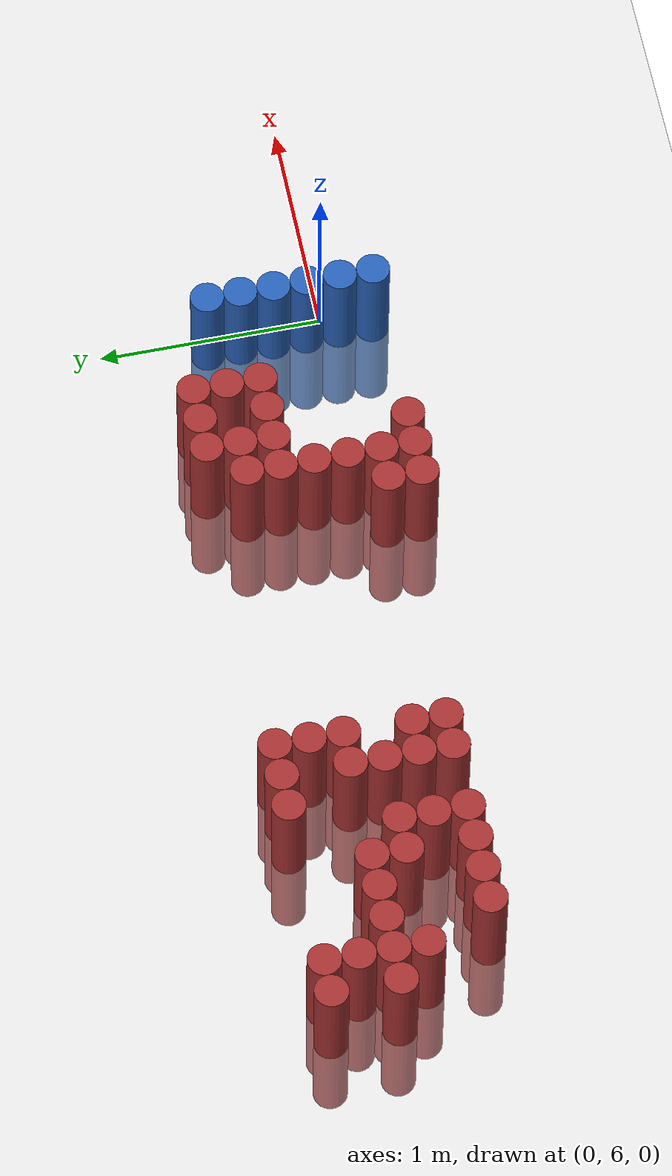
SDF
<sdf version="1.6">
 <world name="default">
  <model name="ground_plane">
   <static>1</static>
   <link name="link">
    <collision name="collision">
     <geometry><plane><normal>0 0 1</normal><size>100 100</size></plane></geometry>
     <surface><friction><ode><mu>100</mu><mu2>50</mu2></ode></friction></surface>
    </collision>
    <visual name="visual">
     <cast_shadows>0</cast_shadows>
     <geometry><plane><normal>0 0 1</normal><size>100 100</size></plane></geometry>
     <material>
      <script><uri>file://media/materials/scripts/gazebo.material</uri><name>Gazebo/Grey</name></script>
     </material>
    </visual>
   </link>
  </model>
  <model name="unit_cylinder_161">
   <static>1</static>
   <pose>-3.525000 6.375000 0.000000 0.000000 0.000000 0.000000</pose>
   <link name="link">
    <inertial>
     <mass>1</mass>
     <inertia><ixx>0.145833</ixx><ixy>0</ixy><ixz>0</ixz><iyy>0.145833</iyy><iyz>0</iyz><izz>0.125</izz></inertia>
    </inertial>
    <collision name="collision">
     <geometry><cylinder><radius>0.075000</radius><length>1</length></cylinder></geometry>
    </collision>
    <visual name="visual">
     <geometry><cylinder><radius>0.075000</radius><length>1</length></cylinder></geometry>
     <material>
      <ambient>0.648000 0.192000 0.192000 1</ambient>
      <diffuse>0.648000 0.192000 0.192000 1</diffuse>
     </material>
     <material>
      <script><name>Gazebo/Grey</name><uri>file://media/materials/scripts/gazebo.material</uri></script>
     </material>
    </visual>
   </link>
  </model>
  <model name="unit_cylinder_162">
   <static>1</static>
   <pose>-3.525000 6.675000 0.000000 0.000000 0.000000 0.000000</pose>
   <link name="link">
    <inertial>
     <mass>1</mass>
     <inertia><ixx>0.145833</ixx><ixy>0</ixy><ixz>0</ixz><iyy>0.145833</iyy><iyz>0</iyz><izz>0.125</izz></inertia>
    </inertial>
    <collision name="collision">
     <geometry><cylinder><radius>0.075000</radius><length>1</length></cylinder></geometry>
    </collision>
    <visual name="visual">
     <geometry><cylinder><radius>0.075000</radius><length>1</length></cylinder></geometry>
     <material>
      <ambient>0.648000 0.192000 0.192000 1</ambient>
      <diffuse>0.648000 0.192000 0.192000 1</diffuse>
     </material>
     <material>
      <script><name>Gazebo/Grey</name><uri>file://media/materials/scripts/gazebo.material</uri></script>
     </material>
    </visual>
   </link>
  </model>
  <model name="unit_cylinder_168">
   <static>1</static>
   <pose>-3.375000 6.225000 0.000000 0.000000 0.000000 0.000000</pose>
   <link name="link">
    <inertial>
     <mass>1</mass>
     <inertia><ixx>0.145833</ixx><ixy>0</ixy><ixz>0</ixz><iyy>0.145833</iyy><iyz>0</iyz><izz>0.125</izz></inertia>
    </inertial>
    <collision name="collision">
     <geometry><cylinder><radius>0.075000</radius><length>1</length></cylinder></geometry>
    </collision>
    <visual name="visual">
     <geometry><cylinder><radius>0.075000</radius><length>1</length></cylinder></geometry>
     <material>
      <ambient>0.648000 0.192000 0.192000 1</ambient>
      <diffuse>0.648000 0.192000 0.192000 1</diffuse>
     </material>
     <material>
      <script><name>Gazebo/Grey</name><uri>file://media/materials/scripts/gazebo.material</uri></script>
     </material>
    </visual>
   </link>
  </model>
  <model name="unit_cylinder_169">
   <static>1</static>
   <pose>-3.375000 6.375000 0.000000 0.000000 0.000000 0.000000</pose>
   <link name="link">
    <inertial>
     <mass>1</mass>
     <inertia><ixx>0.145833</ixx><ixy>0</ixy><ixz>0</ixz><iyy>0.145833</iyy><iyz>0</iyz><izz>0.125</izz></inertia>
    </inertial>
    <collision name="collision">
     <geometry><cylinder><radius>0.075000</radius><length>1</length></cylinder></geometry>
    </collision>
    <visual name="visual">
     <geometry><cylinder><radius>0.075000</radius><length>1</length></cylinder></geometry>
     <material>
      <ambient>0.648000 0.192000 0.192000 1</ambient>
      <diffuse>0.648000 0.192000 0.192000 1</diffuse>
     </material>
     <material>
      <script><name>Gazebo/Grey</name><uri>file://media/materials/scripts/gazebo.material</uri></script>
     </material>
    </visual>
   </link>
  </model>
  <model name="unit_cylinder_170">
   <static>1</static>
   <pose>-3.375000 6.525000 0.000000 0.000000 0.000000 0.000000</pose>
   <link name="link">
    <inertial>
     <mass>1</mass>
     <inertia><ixx>0.145833</ixx><ixy>0</ixy><ixz>0</ixz><iyy>0.145833</iyy><iyz>0</iyz><izz>0.125</izz></inertia>
    </inertial>
    <collision name="collision">
     <geometry><cylinder><radius>0.075000</radius><length>1</length></cylinder></geometry>
    </collision>
    <visual name="visual">
     <geometry><cylinder><radius>0.075000</radius><length>1</length></cylinder></geometry>
     <material>
      <ambient>0.648000 0.192000 0.192000 1</ambient>
      <diffuse>0.648000 0.192000 0.192000 1</diffuse>
     </material>
     <material>
      <script><name>Gazebo/Grey</name><uri>file://media/materials/scripts/gazebo.material</uri></script>
     </material>
    </visual>
   </link>
  </model>
  <model name="unit_cylinder_171">
   <static>1</static>
   <pose>-3.375000 6.675000 0.000000 0.000000 0.000000 0.000000</pose>
   <link name="link">
    <inertial>
     <mass>1</mass>
     <inertia><ixx>0.145833</ixx><ixy>0</ixy><ixz>0</ixz><iyy>0.145833</iyy><iyz>0</iyz><izz>0.125</izz></inertia>
    </inertial>
    <collision name="collision">
     <geometry><cylinder><radius>0.075000</radius><length>1</length></cylinder></geometry>
    </collision>
    <visual name="visual">
     <geometry><cylinder><radius>0.075000</radius><length>1</length></cylinder></geometry>
     <material>
      <ambient>0.648000 0.192000 0.192000 1</ambient>
      <diffuse>0.648000 0.192000 0.192000 1</diffuse>
     </material>
     <material>
      <script><name>Gazebo/Grey</name><uri>file://media/materials/scripts/gazebo.material</uri></script>
     </material>
    </visual>
   </link>
  </model>
  <model name="unit_cylinder_177">
   <static>1</static>
   <pose>-3.225000 5.925000 0.000000 0.000000 0.000000 0.000000</pose>
   <link name="link">
    <inertial>
     <mass>1</mass>
     <inertia><ixx>0.145833</ixx><ixy>0</ixy><ixz>0</ixz><iyy>0.145833</iyy><iyz>0</iyz><izz>0.125</izz></inertia>
    </inertial>
    <collision name="collision">
     <geometry><cylinder><radius>0.075000</radius><length>1</length></cylinder></geometry>
    </collision>
    <visual name="visual">
     <geometry><cylinder><radius>0.075000</radius><length>1</length></cylinder></geometry>
     <material>
      <ambient>0.648000 0.192000 0.192000 1</ambient>
      <diffuse>0.648000 0.192000 0.192000 1</diffuse>
     </material>
     <material>
      <script><name>Gazebo/Grey</name><uri>file://media/materials/scripts/gazebo.material</uri></script>
     </material>
    </visual>
   </link>
  </model>
  <model name="unit_cylinder_178">
   <static>1</static>
   <pose>-3.225000 6.375000 0.000000 0.000000 0.000000 0.000000</pose>
   <link name="link">
    <inertial>
     <mass>1</mass>
     <inertia><ixx>0.145833</ixx><ixy>0</ixy><ixz>0</ixz><iyy>0.145833</iyy><iyz>0</iyz><izz>0.125</izz></inertia>
    </inertial>
    <collision name="collision">
     <geometry><cylinder><radius>0.075000</radius><length>1</length></cylinder></geometry>
    </collision>
    <visual name="visual">
     <geometry><cylinder><radius>0.075000</radius><length>1</length></cylinder></geometry>
     <material>
      <ambient>0.648000 0.192000 0.192000 1</ambient>
      <diffuse>0.648000 0.192000 0.192000 1</diffuse>
     </material>
     <material>
      <script><name>Gazebo/Grey</name><uri>file://media/materials/scripts/gazebo.material</uri></script>
     </material>
    </visual>
   </link>
  </model>
  <model name="unit_cylinder_185">
   <static>1</static>
   <pose>-3.075000 5.925000 0.000000 0.000000 0.000000 0.000000</pose>
   <link name="link">
    <inertial>
     <mass>1</mass>
     <inertia><ixx>0.145833</ixx><ixy>0</ixy><ixz>0</ixz><iyy>0.145833</iyy><iyz>0</iyz><izz>0.125</izz></inertia>
    </inertial>
    <collision name="collision">
     <geometry><cylinder><radius>0.075000</radius><length>1</length></cylinder></geometry>
    </collision>
    <visual name="visual">
     <geometry><cylinder><radius>0.075000</radius><length>1</length></cylinder></geometry>
     <material>
      <ambient>0.648000 0.192000 0.192000 1</ambient>
      <diffuse>0.648000 0.192000 0.192000 1</diffuse>
     </material>
     <material>
      <script><name>Gazebo/Grey</name><uri>file://media/materials/scripts/gazebo.material</uri></script>
     </material>
    </visual>
   </link>
  </model>
  <model name="unit_cylinder_186">
   <static>1</static>
   <pose>-3.075000 6.375000 0.000000 0.000000 0.000000 0.000000</pose>
   <link name="link">
    <inertial>
     <mass>1</mass>
     <inertia><ixx>0.145833</ixx><ixy>0</ixy><ixz>0</ixz><iyy>0.145833</iyy><iyz>0</iyz><izz>0.125</izz></inertia>
    </inertial>
    <collision name="collision">
     <geometry><cylinder><radius>0.075000</radius><length>1</length></cylinder></geometry>
    </collision>
    <visual name="visual">
     <geometry><cylinder><radius>0.075000</radius><length>1</length></cylinder></geometry>
     <material>
      <ambient>0.648000 0.192000 0.192000 1</ambient>
      <diffuse>0.648000 0.192000 0.192000 1</diffuse>
     </material>
     <material>
      <script><name>Gazebo/Grey</name><uri>file://media/materials/scripts/gazebo.material</uri></script>
     </material>
    </visual>
   </link>
  </model>
  <model name="unit_cylinder_194">
   <static>1</static>
   <pose>-2.925000 5.925000 0.000000 0.000000 0.000000 0.000000</pose>
   <link name="link">
    <inertial>
     <mass>1</mass>
     <inertia><ixx>0.145833</ixx><ixy>0</ixy><ixz>0</ixz><iyy>0.145833</iyy><iyz>0</iyz><izz>0.125</izz></inertia>
    </inertial>
    <collision name="collision">
     <geometry><cylinder><radius>0.075000</radius><length>1</length></cylinder></geometry>
    </collision>
    <visual name="visual">
     <geometry><cylinder><radius>0.075000</radius><length>1</length></cylinder></geometry>
     <material>
      <ambient>0.648000 0.192000 0.192000 1</ambient>
      <diffuse>0.648000 0.192000 0.192000 1</diffuse>
     </material>
     <material>
      <script><name>Gazebo/Grey</name><uri>file://media/materials/scripts/gazebo.material</uri></script>
     </material>
    </visual>
   </link>
  </model>
  <model name="unit_cylinder_195">
   <static>1</static>
   <pose>-2.925000 6.225000 0.000000 0.000000 0.000000 0.000000</pose>
   <link name="link">
    <inertial>
     <mass>1</mass>
     <inertia><ixx>0.145833</ixx><ixy>0</ixy><ixz>0</ixz><iyy>0.145833</iyy><iyz>0</iyz><izz>0.125</izz></inertia>
    </inertial>
    <collision name="collision">
     <geometry><cylinder><radius>0.075000</radius><length>1</length></cylinder></geometry>
    </collision>
    <visual name="visual">
     <geometry><cylinder><radius>0.075000</radius><length>1</length></cylinder></geometry>
     <material>
      <ambient>0.648000 0.192000 0.192000 1</ambient>
      <diffuse>0.648000 0.192000 0.192000 1</diffuse>
     </material>
     <material>
      <script><name>Gazebo/Grey</name><uri>file://media/materials/scripts/gazebo.material</uri></script>
     </material>
    </visual>
   </link>
  </model>
  <model name="unit_cylinder_196">
   <static>1</static>
   <pose>-2.925000 6.375000 0.000000 0.000000 0.000000 0.000000</pose>
   <link name="link">
    <inertial>
     <mass>1</mass>
     <inertia><ixx>0.145833</ixx><ixy>0</ixy><ixz>0</ixz><iyy>0.145833</iyy><iyz>0</iyz><izz>0.125</izz></inertia>
    </inertial>
    <collision name="collision">
     <geometry><cylinder><radius>0.075000</radius><length>1</length></cylinder></geometry>
    </collision>
    <visual name="visual">
     <geometry><cylinder><radius>0.075000</radius><length>1</length></cylinder></geometry>
     <material>
      <ambient>0.648000 0.192000 0.192000 1</ambient>
      <diffuse>0.648000 0.192000 0.192000 1</diffuse>
     </material>
     <material>
      <script><name>Gazebo/Grey</name><uri>file://media/materials/scripts/gazebo.material</uri></script>
     </material>
    </visual>
   </link>
  </model>
  <model name="unit_cylinder_200">
   <static>1</static>
   <pose>-2.775000 5.925000 0.000000 0.000000 0.000000 0.000000</pose>
   <link name="link">
    <inertial>
     <mass>1</mass>
     <inertia><ixx>0.145833</ixx><ixy>0</ixy><ixz>0</ixz><iyy>0.145833</iyy><iyz>0</iyz><izz>0.125</izz></inertia>
    </inertial>
    <collision name="collision">
     <geometry><cylinder><radius>0.075000</radius><length>1</length></cylinder></geometry>
    </collision>
    <visual name="visual">
     <geometry><cylinder><radius>0.075000</radius><length>1</length></cylinder></geometry>
     <material>
      <ambient>0.648000 0.192000 0.192000 1</ambient>
      <diffuse>0.648000 0.192000 0.192000 1</diffuse>
     </material>
     <material>
      <script><name>Gazebo/Grey</name><uri>file://media/materials/scripts/gazebo.material</uri></script>
     </material>
    </visual>
   </link>
  </model>
  <model name="unit_cylinder_201">
   <static>1</static>
   <pose>-2.775000 6.075000 0.000000 0.000000 0.000000 0.000000</pose>
   <link name="link">
    <inertial>
     <mass>1</mass>
     <inertia><ixx>0.145833</ixx><ixy>0</ixy><ixz>0</ixz><iyy>0.145833</iyy><iyz>0</iyz><izz>0.125</izz></inertia>
    </inertial>
    <collision name="collision">
     <geometry><cylinder><radius>0.075000</radius><length>1</length></cylinder></geometry>
    </collision>
    <visual name="visual">
     <geometry><cylinder><radius>0.075000</radius><length>1</length></cylinder></geometry>
     <material>
      <ambient>0.648000 0.192000 0.192000 1</ambient>
      <diffuse>0.648000 0.192000 0.192000 1</diffuse>
     </material>
     <material>
      <script><name>Gazebo/Grey</name><uri>file://media/materials/scripts/gazebo.material</uri></script>
     </material>
    </visual>
   </link>
  </model>
  <model name="unit_cylinder_202">
   <static>1</static>
   <pose>-2.775000 6.225000 0.000000 0.000000 0.000000 0.000000</pose>
   <link name="link">
    <inertial>
     <mass>1</mass>
     <inertia><ixx>0.145833</ixx><ixy>0</ixy><ixz>0</ixz><iyy>0.145833</iyy><iyz>0</iyz><izz>0.125</izz></inertia>
    </inertial>
    <collision name="collision">
     <geometry><cylinder><radius>0.075000</radius><length>1</length></cylinder></geometry>
    </collision>
    <visual name="visual">
     <geometry><cylinder><radius>0.075000</radius><length>1</length></cylinder></geometry>
     <material>
      <ambient>0.648000 0.192000 0.192000 1</ambient>
      <diffuse>0.648000 0.192000 0.192000 1</diffuse>
     </material>
     <material>
      <script><name>Gazebo/Grey</name><uri>file://media/materials/scripts/gazebo.material</uri></script>
     </material>
    </visual>
   </link>
  </model>
  <model name="unit_cylinder_206">
   <static>1</static>
   <pose>-2.625000 6.675000 0.000000 0.000000 0.000000 0.000000</pose>
   <link name="link">
    <inertial>
     <mass>1</mass>
     <inertia><ixx>0.145833</ixx><ixy>0</ixy><ixz>0</ixz><iyy>0.145833</iyy><iyz>0</iyz><izz>0.125</izz></inertia>
    </inertial>
    <collision name="collision">
     <geometry><cylinder><radius>0.075000</radius><length>1</length></cylinder></geometry>
    </collision>
    <visual name="visual">
     <geometry><cylinder><radius>0.075000</radius><length>1</length></cylinder></geometry>
     <material>
      <ambient>0.648000 0.192000 0.192000 1</ambient>
      <diffuse>0.648000 0.192000 0.192000 1</diffuse>
     </material>
     <material>
      <script><name>Gazebo/Grey</name><uri>file://media/materials/scripts/gazebo.material</uri></script>
     </material>
    </visual>
   </link>
  </model>
  <model name="unit_cylinder_213">
   <static>1</static>
   <pose>-2.475000 5.925000 0.000000 0.000000 0.000000 0.000000</pose>
   <link name="link">
    <inertial>
     <mass>1</mass>
     <inertia><ixx>0.145833</ixx><ixy>0</ixy><ixz>0</ixz><iyy>0.145833</iyy><iyz>0</iyz><izz>0.125</izz></inertia>
    </inertial>
    <collision name="collision">
     <geometry><cylinder><radius>0.075000</radius><length>1</length></cylinder></geometry>
    </collision>
    <visual name="visual">
     <geometry><cylinder><radius>0.075000</radius><length>1</length></cylinder></geometry>
     <material>
      <ambient>0.648000 0.192000 0.192000 1</ambient>
      <diffuse>0.648000 0.192000 0.192000 1</diffuse>
     </material>
     <material>
      <script><name>Gazebo/Grey</name><uri>file://media/materials/scripts/gazebo.material</uri></script>
     </material>
    </visual>
   </link>
  </model>
  <model name="unit_cylinder_214">
   <static>1</static>
   <pose>-2.475000 6.075000 0.000000 0.000000 0.000000 0.000000</pose>
   <link name="link">
    <inertial>
     <mass>1</mass>
     <inertia><ixx>0.145833</ixx><ixy>0</ixy><ixz>0</ixz><iyy>0.145833</iyy><iyz>0</iyz><izz>0.125</izz></inertia>
    </inertial>
    <collision name="collision">
     <geometry><cylinder><radius>0.075000</radius><length>1</length></cylinder></geometry>
    </collision>
    <visual name="visual">
     <geometry><cylinder><radius>0.075000</radius><length>1</length></cylinder></geometry>
     <material>
      <ambient>0.648000 0.192000 0.192000 1</ambient>
      <diffuse>0.648000 0.192000 0.192000 1</diffuse>
     </material>
     <material>
      <script><name>Gazebo/Grey</name><uri>file://media/materials/scripts/gazebo.material</uri></script>
     </material>
    </visual>
   </link>
  </model>
  <model name="unit_cylinder_215">
   <static>1</static>
   <pose>-2.475000 6.225000 0.000000 0.000000 0.000000 0.000000</pose>
   <link name="link">
    <inertial>
     <mass>1</mass>
     <inertia><ixx>0.145833</ixx><ixy>0</ixy><ixz>0</ixz><iyy>0.145833</iyy><iyz>0</iyz><izz>0.125</izz></inertia>
    </inertial>
    <collision name="collision">
     <geometry><cylinder><radius>0.075000</radius><length>1</length></cylinder></geometry>
    </collision>
    <visual name="visual">
     <geometry><cylinder><radius>0.075000</radius><length>1</length></cylinder></geometry>
     <material>
      <ambient>0.648000 0.192000 0.192000 1</ambient>
      <diffuse>0.648000 0.192000 0.192000 1</diffuse>
     </material>
     <material>
      <script><name>Gazebo/Grey</name><uri>file://media/materials/scripts/gazebo.material</uri></script>
     </material>
    </visual>
   </link>
  </model>
  <model name="unit_cylinder_216">
   <static>1</static>
   <pose>-2.475000 6.375000 0.000000 0.000000 0.000000 0.000000</pose>
   <link name="link">
    <inertial>
     <mass>1</mass>
     <inertia><ixx>0.145833</ixx><ixy>0</ixy><ixz>0</ixz><iyy>0.145833</iyy><iyz>0</iyz><izz>0.125</izz></inertia>
    </inertial>
    <collision name="collision">
     <geometry><cylinder><radius>0.075000</radius><length>1</length></cylinder></geometry>
    </collision>
    <visual name="visual">
     <geometry><cylinder><radius>0.075000</radius><length>1</length></cylinder></geometry>
     <material>
      <ambient>0.648000 0.192000 0.192000 1</ambient>
      <diffuse>0.648000 0.192000 0.192000 1</diffuse>
     </material>
     <material>
      <script><name>Gazebo/Grey</name><uri>file://media/materials/scripts/gazebo.material</uri></script>
     </material>
    </visual>
   </link>
  </model>
  <model name="unit_cylinder_217">
   <static>1</static>
   <pose>-2.475000 6.675000 0.000000 0.000000 0.000000 0.000000</pose>
   <link name="link">
    <inertial>
     <mass>1</mass>
     <inertia><ixx>0.145833</ixx><ixy>0</ixy><ixz>0</ixz><iyy>0.145833</iyy><iyz>0</iyz><izz>0.125</izz></inertia>
    </inertial>
    <collision name="collision">
     <geometry><cylinder><radius>0.075000</radius><length>1</length></cylinder></geometry>
    </collision>
    <visual name="visual">
     <geometry><cylinder><radius>0.075000</radius><length>1</length></cylinder></geometry>
     <material>
      <ambient>0.648000 0.192000 0.192000 1</ambient>
      <diffuse>0.648000 0.192000 0.192000 1</diffuse>
     </material>
     <material>
      <script><name>Gazebo/Grey</name><uri>file://media/materials/scripts/gazebo.material</uri></script>
     </material>
    </visual>
   </link>
  </model>
  <model name="unit_cylinder_220">
   <static>1</static>
   <pose>-2.325000 5.925000 0.000000 0.000000 0.000000 0.000000</pose>
   <link name="link">
    <inertial>
     <mass>1</mass>
     <inertia><ixx>0.145833</ixx><ixy>0</ixy><ixz>0</ixz><iyy>0.145833</iyy><iyz>0</iyz><izz>0.125</izz></inertia>
    </inertial>
    <collision name="collision">
     <geometry><cylinder><radius>0.075000</radius><length>1</length></cylinder></geometry>
    </collision>
    <visual name="visual">
     <geometry><cylinder><radius>0.075000</radius><length>1</length></cylinder></geometry>
     <material>
      <ambient>0.648000 0.192000 0.192000 1</ambient>
      <diffuse>0.648000 0.192000 0.192000 1</diffuse>
     </material>
     <material>
      <script><name>Gazebo/Grey</name><uri>file://media/materials/scripts/gazebo.material</uri></script>
     </material>
    </visual>
   </link>
  </model>
  <model name="unit_cylinder_221">
   <static>1</static>
   <pose>-2.325000 6.075000 0.000000 0.000000 0.000000 0.000000</pose>
   <link name="link">
    <inertial>
     <mass>1</mass>
     <inertia><ixx>0.145833</ixx><ixy>0</ixy><ixz>0</ixz><iyy>0.145833</iyy><iyz>0</iyz><izz>0.125</izz></inertia>
    </inertial>
    <collision name="collision">
     <geometry><cylinder><radius>0.075000</radius><length>1</length></cylinder></geometry>
    </collision>
    <visual name="visual">
     <geometry><cylinder><radius>0.075000</radius><length>1</length></cylinder></geometry>
     <material>
      <ambient>0.648000 0.192000 0.192000 1</ambient>
      <diffuse>0.648000 0.192000 0.192000 1</diffuse>
     </material>
     <material>
      <script><name>Gazebo/Grey</name><uri>file://media/materials/scripts/gazebo.material</uri></script>
     </material>
    </visual>
   </link>
  </model>
  <model name="unit_cylinder_222">
   <static>1</static>
   <pose>-2.325000 6.375000 0.000000 0.000000 0.000000 0.000000</pose>
   <link name="link">
    <inertial>
     <mass>1</mass>
     <inertia><ixx>0.145833</ixx><ixy>0</ixy><ixz>0</ixz><iyy>0.145833</iyy><iyz>0</iyz><izz>0.125</izz></inertia>
    </inertial>
    <collision name="collision">
     <geometry><cylinder><radius>0.075000</radius><length>1</length></cylinder></geometry>
    </collision>
    <visual name="visual">
     <geometry><cylinder><radius>0.075000</radius><length>1</length></cylinder></geometry>
     <material>
      <ambient>0.648000 0.192000 0.192000 1</ambient>
      <diffuse>0.648000 0.192000 0.192000 1</diffuse>
     </material>
     <material>
      <script><name>Gazebo/Grey</name><uri>file://media/materials/scripts/gazebo.material</uri></script>
     </material>
    </visual>
   </link>
  </model>
  <model name="unit_cylinder_223">
   <static>1</static>
   <pose>-2.325000 6.525000 0.000000 0.000000 0.000000 0.000000</pose>
   <link name="link">
    <inertial>
     <mass>1</mass>
     <inertia><ixx>0.145833</ixx><ixy>0</ixy><ixz>0</ixz><iyy>0.145833</iyy><iyz>0</iyz><izz>0.125</izz></inertia>
    </inertial>
    <collision name="collision">
     <geometry><cylinder><radius>0.075000</radius><length>1</length></cylinder></geometry>
    </collision>
    <visual name="visual">
     <geometry><cylinder><radius>0.075000</radius><length>1</length></cylinder></geometry>
     <material>
      <ambient>0.648000 0.192000 0.192000 1</ambient>
      <diffuse>0.648000 0.192000 0.192000 1</diffuse>
     </material>
     <material>
      <script><name>Gazebo/Grey</name><uri>file://media/materials/scripts/gazebo.material</uri></script>
     </material>
    </visual>
   </link>
  </model>
  <model name="unit_cylinder_224">
   <static>1</static>
   <pose>-2.325000 6.675000 0.000000 0.000000 0.000000 0.000000</pose>
   <link name="link">
    <inertial>
     <mass>1</mass>
     <inertia><ixx>0.145833</ixx><ixy>0</ixy><ixz>0</ixz><iyy>0.145833</iyy><iyz>0</iyz><izz>0.125</izz></inertia>
    </inertial>
    <collision name="collision">
     <geometry><cylinder><radius>0.075000</radius><length>1</length></cylinder></geometry>
    </collision>
    <visual name="visual">
     <geometry><cylinder><radius>0.075000</radius><length>1</length></cylinder></geometry>
     <material>
      <ambient>0.648000 0.192000 0.192000 1</ambient>
      <diffuse>0.648000 0.192000 0.192000 1</diffuse>
     </material>
     <material>
      <script><name>Gazebo/Grey</name><uri>file://media/materials/scripts/gazebo.material</uri></script>
     </material>
    </visual>
   </link>
  </model>
  <model name="unit_cylinder_238">
   <static>1</static>
   <pose>-1.125000 5.775000 0.000000 0.000000 0.000000 0.000000</pose>
   <link name="link">
    <inertial>
     <mass>1</mass>
     <inertia><ixx>0.145833</ixx><ixy>0</ixy><ixz>0</ixz><iyy>0.145833</iyy><iyz>0</iyz><izz>0.125</izz></inertia>
    </inertial>
    <collision name="collision">
     <geometry><cylinder><radius>0.075000</radius><length>1</length></cylinder></geometry>
    </collision>
    <visual name="visual">
     <geometry><cylinder><radius>0.075000</radius><length>1</length></cylinder></geometry>
     <material>
      <ambient>0.648000 0.192000 0.192000 1</ambient>
      <diffuse>0.648000 0.192000 0.192000 1</diffuse>
     </material>
     <material>
      <script><name>Gazebo/Grey</name><uri>file://media/materials/scripts/gazebo.material</uri></script>
     </material>
    </visual>
   </link>
  </model>
  <model name="unit_cylinder_239">
   <static>1</static>
   <pose>-1.125000 5.925000 0.000000 0.000000 0.000000 0.000000</pose>
   <link name="link">
    <inertial>
     <mass>1</mass>
     <inertia><ixx>0.145833</ixx><ixy>0</ixy><ixz>0</ixz><iyy>0.145833</iyy><iyz>0</iyz><izz>0.125</izz></inertia>
    </inertial>
    <collision name="collision">
     <geometry><cylinder><radius>0.075000</radius><length>1</length></cylinder></geometry>
    </collision>
    <visual name="visual">
     <geometry><cylinder><radius>0.075000</radius><length>1</length></cylinder></geometry>
     <material>
      <ambient>0.648000 0.192000 0.192000 1</ambient>
      <diffuse>0.648000 0.192000 0.192000 1</diffuse>
     </material>
     <material>
      <script><name>Gazebo/Grey</name><uri>file://media/materials/scripts/gazebo.material</uri></script>
     </material>
    </visual>
   </link>
  </model>
  <model name="unit_cylinder_242">
   <static>1</static>
   <pose>-0.975000 5.775000 0.000000 0.000000 0.000000 0.000000</pose>
   <link name="link">
    <inertial>
     <mass>1</mass>
     <inertia><ixx>0.145833</ixx><ixy>0</ixy><ixz>0</ixz><iyy>0.145833</iyy><iyz>0</iyz><izz>0.125</izz></inertia>
    </inertial>
    <collision name="collision">
     <geometry><cylinder><radius>0.075000</radius><length>1</length></cylinder></geometry>
    </collision>
    <visual name="visual">
     <geometry><cylinder><radius>0.075000</radius><length>1</length></cylinder></geometry>
     <material>
      <ambient>0.648000 0.192000 0.192000 1</ambient>
      <diffuse>0.648000 0.192000 0.192000 1</diffuse>
     </material>
     <material>
      <script><name>Gazebo/Grey</name><uri>file://media/materials/scripts/gazebo.material</uri></script>
     </material>
    </visual>
   </link>
  </model>
  <model name="unit_cylinder_243">
   <static>1</static>
   <pose>-0.975000 5.925000 0.000000 0.000000 0.000000 0.000000</pose>
   <link name="link">
    <inertial>
     <mass>1</mass>
     <inertia><ixx>0.145833</ixx><ixy>0</ixy><ixz>0</ixz><iyy>0.145833</iyy><iyz>0</iyz><izz>0.125</izz></inertia>
    </inertial>
    <collision name="collision">
     <geometry><cylinder><radius>0.075000</radius><length>1</length></cylinder></geometry>
    </collision>
    <visual name="visual">
     <geometry><cylinder><radius>0.075000</radius><length>1</length></cylinder></geometry>
     <material>
      <ambient>0.648000 0.192000 0.192000 1</ambient>
      <diffuse>0.648000 0.192000 0.192000 1</diffuse>
     </material>
     <material>
      <script><name>Gazebo/Grey</name><uri>file://media/materials/scripts/gazebo.material</uri></script>
     </material>
    </visual>
   </link>
  </model>
  <model name="unit_cylinder_244">
   <static>1</static>
   <pose>-0.975000 6.075000 0.000000 0.000000 0.000000 0.000000</pose>
   <link name="link">
    <inertial>
     <mass>1</mass>
     <inertia><ixx>0.145833</ixx><ixy>0</ixy><ixz>0</ixz><iyy>0.145833</iyy><iyz>0</iyz><izz>0.125</izz></inertia>
    </inertial>
    <collision name="collision">
     <geometry><cylinder><radius>0.075000</radius><length>1</length></cylinder></geometry>
    </collision>
    <visual name="visual">
     <geometry><cylinder><radius>0.075000</radius><length>1</length></cylinder></geometry>
     <material>
      <ambient>0.648000 0.192000 0.192000 1</ambient>
      <diffuse>0.648000 0.192000 0.192000 1</diffuse>
     </material>
     <material>
      <script><name>Gazebo/Grey</name><uri>file://media/materials/scripts/gazebo.material</uri></script>
     </material>
    </visual>
   </link>
  </model>
  <model name="unit_cylinder_245">
   <static>1</static>
   <pose>-0.975000 6.225000 0.000000 0.000000 0.000000 0.000000</pose>
   <link name="link">
    <inertial>
     <mass>1</mass>
     <inertia><ixx>0.145833</ixx><ixy>0</ixy><ixz>0</ixz><iyy>0.145833</iyy><iyz>0</iyz><izz>0.125</izz></inertia>
    </inertial>
    <collision name="collision">
     <geometry><cylinder><radius>0.075000</radius><length>1</length></cylinder></geometry>
    </collision>
    <visual name="visual">
     <geometry><cylinder><radius>0.075000</radius><length>1</length></cylinder></geometry>
     <material>
      <ambient>0.648000 0.192000 0.192000 1</ambient>
      <diffuse>0.648000 0.192000 0.192000 1</diffuse>
     </material>
     <material>
      <script><name>Gazebo/Grey</name><uri>file://media/materials/scripts/gazebo.material</uri></script>
     </material>
    </visual>
   </link>
  </model>
  <model name="unit_cylinder_246">
   <static>1</static>
   <pose>-0.975000 6.375000 0.000000 0.000000 0.000000 0.000000</pose>
   <link name="link">
    <inertial>
     <mass>1</mass>
     <inertia><ixx>0.145833</ixx><ixy>0</ixy><ixz>0</ixz><iyy>0.145833</iyy><iyz>0</iyz><izz>0.125</izz></inertia>
    </inertial>
    <collision name="collision">
     <geometry><cylinder><radius>0.075000</radius><length>1</length></cylinder></geometry>
    </collision>
    <visual name="visual">
     <geometry><cylinder><radius>0.075000</radius><length>1</length></cylinder></geometry>
     <material>
      <ambient>0.648000 0.192000 0.192000 1</ambient>
      <diffuse>0.648000 0.192000 0.192000 1</diffuse>
     </material>
     <material>
      <script><name>Gazebo/Grey</name><uri>file://media/materials/scripts/gazebo.material</uri></script>
     </material>
    </visual>
   </link>
  </model>
  <model name="unit_cylinder_247">
   <static>1</static>
   <pose>-0.975000 6.525000 0.000000 0.000000 0.000000 0.000000</pose>
   <link name="link">
    <inertial>
     <mass>1</mass>
     <inertia><ixx>0.145833</ixx><ixy>0</ixy><ixz>0</ixz><iyy>0.145833</iyy><iyz>0</iyz><izz>0.125</izz></inertia>
    </inertial>
    <collision name="collision">
     <geometry><cylinder><radius>0.075000</radius><length>1</length></cylinder></geometry>
    </collision>
    <visual name="visual">
     <geometry><cylinder><radius>0.075000</radius><length>1</length></cylinder></geometry>
     <material>
      <ambient>0.648000 0.192000 0.192000 1</ambient>
      <diffuse>0.648000 0.192000 0.192000 1</diffuse>
     </material>
     <material>
      <script><name>Gazebo/Grey</name><uri>file://media/materials/scripts/gazebo.material</uri></script>
     </material>
    </visual>
   </link>
  </model>
  <model name="unit_cylinder_251">
   <static>1</static>
   <pose>-0.825000 5.775000 0.000000 0.000000 0.000000 0.000000</pose>
   <link name="link">
    <inertial>
     <mass>1</mass>
     <inertia><ixx>0.145833</ixx><ixy>0</ixy><ixz>0</ixz><iyy>0.145833</iyy><iyz>0</iyz><izz>0.125</izz></inertia>
    </inertial>
    <collision name="collision">
     <geometry><cylinder><radius>0.075000</radius><length>1</length></cylinder></geometry>
    </collision>
    <visual name="visual">
     <geometry><cylinder><radius>0.075000</radius><length>1</length></cylinder></geometry>
     <material>
      <ambient>0.648000 0.192000 0.192000 1</ambient>
      <diffuse>0.648000 0.192000 0.192000 1</diffuse>
     </material>
     <material>
      <script><name>Gazebo/Grey</name><uri>file://media/materials/scripts/gazebo.material</uri></script>
     </material>
    </visual>
   </link>
  </model>
  <model name="unit_cylinder_252">
   <static>1</static>
   <pose>-0.825000 6.375000 0.000000 0.000000 0.000000 0.000000</pose>
   <link name="link">
    <inertial>
     <mass>1</mass>
     <inertia><ixx>0.145833</ixx><ixy>0</ixy><ixz>0</ixz><iyy>0.145833</iyy><iyz>0</iyz><izz>0.125</izz></inertia>
    </inertial>
    <collision name="collision">
     <geometry><cylinder><radius>0.075000</radius><length>1</length></cylinder></geometry>
    </collision>
    <visual name="visual">
     <geometry><cylinder><radius>0.075000</radius><length>1</length></cylinder></geometry>
     <material>
      <ambient>0.648000 0.192000 0.192000 1</ambient>
      <diffuse>0.648000 0.192000 0.192000 1</diffuse>
     </material>
     <material>
      <script><name>Gazebo/Grey</name><uri>file://media/materials/scripts/gazebo.material</uri></script>
     </material>
    </visual>
   </link>
  </model>
  <model name="unit_cylinder_253">
   <static>1</static>
   <pose>-0.825000 6.525000 0.000000 0.000000 0.000000 0.000000</pose>
   <link name="link">
    <inertial>
     <mass>1</mass>
     <inertia><ixx>0.145833</ixx><ixy>0</ixy><ixz>0</ixz><iyy>0.145833</iyy><iyz>0</iyz><izz>0.125</izz></inertia>
    </inertial>
    <collision name="collision">
     <geometry><cylinder><radius>0.075000</radius><length>1</length></cylinder></geometry>
    </collision>
    <visual name="visual">
     <geometry><cylinder><radius>0.075000</radius><length>1</length></cylinder></geometry>
     <material>
      <ambient>0.648000 0.192000 0.192000 1</ambient>
      <diffuse>0.648000 0.192000 0.192000 1</diffuse>
     </material>
     <material>
      <script><name>Gazebo/Grey</name><uri>file://media/materials/scripts/gazebo.material</uri></script>
     </material>
    </visual>
   </link>
  </model>
  <model name="unit_cylinder_254">
   <static>1</static>
   <pose>-0.825000 6.675000 0.000000 0.000000 0.000000 0.000000</pose>
   <link name="link">
    <inertial>
     <mass>1</mass>
     <inertia><ixx>0.145833</ixx><ixy>0</ixy><ixz>0</ixz><iyy>0.145833</iyy><iyz>0</iyz><izz>0.125</izz></inertia>
    </inertial>
    <collision name="collision">
     <geometry><cylinder><radius>0.075000</radius><length>1</length></cylinder></geometry>
    </collision>
    <visual name="visual">
     <geometry><cylinder><radius>0.075000</radius><length>1</length></cylinder></geometry>
     <material>
      <ambient>0.648000 0.192000 0.192000 1</ambient>
      <diffuse>0.648000 0.192000 0.192000 1</diffuse>
     </material>
     <material>
      <script><name>Gazebo/Grey</name><uri>file://media/materials/scripts/gazebo.material</uri></script>
     </material>
    </visual>
   </link>
  </model>
  <model name="unit_cylinder_258">
   <static>1</static>
   <pose>-0.675000 6.375000 0.000000 0.000000 0.000000 0.000000</pose>
   <link name="link">
    <inertial>
     <mass>1</mass>
     <inertia><ixx>0.145833</ixx><ixy>0</ixy><ixz>0</ixz><iyy>0.145833</iyy><iyz>0</iyz><izz>0.125</izz></inertia>
    </inertial>
    <collision name="collision">
     <geometry><cylinder><radius>0.075000</radius><length>1</length></cylinder></geometry>
    </collision>
    <visual name="visual">
     <geometry><cylinder><radius>0.075000</radius><length>1</length></cylinder></geometry>
     <material>
      <ambient>0.648000 0.192000 0.192000 1</ambient>
      <diffuse>0.648000 0.192000 0.192000 1</diffuse>
     </material>
     <material>
      <script><name>Gazebo/Grey</name><uri>file://media/materials/scripts/gazebo.material</uri></script>
     </material>
    </visual>
   </link>
  </model>
  <model name="unit_cylinder_259">
   <static>1</static>
   <pose>-0.675000 6.675000 0.000000 0.000000 0.000000 0.000000</pose>
   <link name="link">
    <inertial>
     <mass>1</mass>
     <inertia><ixx>0.145833</ixx><ixy>0</ixy><ixz>0</ixz><iyy>0.145833</iyy><iyz>0</iyz><izz>0.125</izz></inertia>
    </inertial>
    <collision name="collision">
     <geometry><cylinder><radius>0.075000</radius><length>1</length></cylinder></geometry>
    </collision>
    <visual name="visual">
     <geometry><cylinder><radius>0.075000</radius><length>1</length></cylinder></geometry>
     <material>
      <ambient>0.648000 0.192000 0.192000 1</ambient>
      <diffuse>0.648000 0.192000 0.192000 1</diffuse>
     </material>
     <material>
      <script><name>Gazebo/Grey</name><uri>file://media/materials/scripts/gazebo.material</uri></script>
     </material>
    </visual>
   </link>
  </model>
  <model name="unit_cylinder_263">
   <static>1</static>
   <pose>-0.525000 6.375000 0.000000 0.000000 0.000000 0.000000</pose>
   <link name="link">
    <inertial>
     <mass>1</mass>
     <inertia><ixx>0.145833</ixx><ixy>0</ixy><ixz>0</ixz><iyy>0.145833</iyy><iyz>0</iyz><izz>0.125</izz></inertia>
    </inertial>
    <collision name="collision">
     <geometry><cylinder><radius>0.075000</radius><length>1</length></cylinder></geometry>
    </collision>
    <visual name="visual">
     <geometry><cylinder><radius>0.075000</radius><length>1</length></cylinder></geometry>
     <material>
      <ambient>0.648000 0.192000 0.192000 1</ambient>
      <diffuse>0.648000 0.192000 0.192000 1</diffuse>
     </material>
     <material>
      <script><name>Gazebo/Grey</name><uri>file://media/materials/scripts/gazebo.material</uri></script>
     </material>
    </visual>
   </link>
  </model>
  <model name="unit_cylinder_264">
   <static>1</static>
   <pose>-0.525000 6.525000 0.000000 0.000000 0.000000 0.000000</pose>
   <link name="link">
    <inertial>
     <mass>1</mass>
     <inertia><ixx>0.145833</ixx><ixy>0</ixy><ixz>0</ixz><iyy>0.145833</iyy><iyz>0</iyz><izz>0.125</izz></inertia>
    </inertial>
    <collision name="collision">
     <geometry><cylinder><radius>0.075000</radius><length>1</length></cylinder></geometry>
    </collision>
    <visual name="visual">
     <geometry><cylinder><radius>0.075000</radius><length>1</length></cylinder></geometry>
     <material>
      <ambient>0.648000 0.192000 0.192000 1</ambient>
      <diffuse>0.648000 0.192000 0.192000 1</diffuse>
     </material>
     <material>
      <script><name>Gazebo/Grey</name><uri>file://media/materials/scripts/gazebo.material</uri></script>
     </material>
    </visual>
   </link>
  </model>
  <model name="unit_cylinder_265">
   <static>1</static>
   <pose>-0.525000 6.675000 0.000000 0.000000 0.000000 0.000000</pose>
   <link name="link">
    <inertial>
     <mass>1</mass>
     <inertia><ixx>0.145833</ixx><ixy>0</ixy><ixz>0</ixz><iyy>0.145833</iyy><iyz>0</iyz><izz>0.125</izz></inertia>
    </inertial>
    <collision name="collision">
     <geometry><cylinder><radius>0.075000</radius><length>1</length></cylinder></geometry>
    </collision>
    <visual name="visual">
     <geometry><cylinder><radius>0.075000</radius><length>1</length></cylinder></geometry>
     <material>
      <ambient>0.648000 0.192000 0.192000 1</ambient>
      <diffuse>0.648000 0.192000 0.192000 1</diffuse>
     </material>
     <material>
      <script><name>Gazebo/Grey</name><uri>file://media/materials/scripts/gazebo.material</uri></script>
     </material>
    </visual>
   </link>
  </model>
  <model name="unit_cylinder_276">
   <static>1</static>
   <pose>-0.075000 5.775000 0.000000 0.000000 0.000000 0.000000</pose>
   <link name="link">
    <inertial>
     <mass>1</mass>
     <inertia><ixx>0.145833</ixx><ixy>0</ixy><ixz>0</ixz><iyy>0.145833</iyy><iyz>0</iyz><izz>0.125</izz></inertia>
    </inertial>
    <collision name="collision">
     <geometry><cylinder><radius>0.075000</radius><length>1</length></cylinder></geometry>
    </collision>
    <visual name="visual">
     <geometry><cylinder><radius>0.075000</radius><length>1</length></cylinder></geometry>
     <material>
      <ambient>0.152000 0.379000 0.720000 1</ambient>
      <diffuse>0.152000 0.379000 0.720000 1</diffuse>
     </material>
     <material>
      <script><name>Gazebo/Grey</name><uri>file://media/materials/scripts/gazebo.material</uri></script>
     </material>
    </visual>
   </link>
  </model>
  <model name="unit_cylinder_277">
   <static>1</static>
   <pose>-0.075000 5.925000 0.000000 0.000000 0.000000 0.000000</pose>
   <link name="link">
    <inertial>
     <mass>1</mass>
     <inertia><ixx>0.145833</ixx><ixy>0</ixy><ixz>0</ixz><iyy>0.145833</iyy><iyz>0</iyz><izz>0.125</izz></inertia>
    </inertial>
    <collision name="collision">
     <geometry><cylinder><radius>0.075000</radius><length>1</length></cylinder></geometry>
    </collision>
    <visual name="visual">
     <geometry><cylinder><radius>0.075000</radius><length>1</length></cylinder></geometry>
     <material>
      <ambient>0.152000 0.379000 0.720000 1</ambient>
      <diffuse>0.152000 0.379000 0.720000 1</diffuse>
     </material>
     <material>
      <script><name>Gazebo/Grey</name><uri>file://media/materials/scripts/gazebo.material</uri></script>
     </material>
    </visual>
   </link>
  </model>
  <model name="unit_cylinder_278">
   <static>1</static>
   <pose>-0.075000 6.075000 0.000000 0.000000 0.000000 0.000000</pose>
   <link name="link">
    <inertial>
     <mass>1</mass>
     <inertia><ixx>0.145833</ixx><ixy>0</ixy><ixz>0</ixz><iyy>0.145833</iyy><iyz>0</iyz><izz>0.125</izz></inertia>
    </inertial>
    <collision name="collision">
     <geometry><cylinder><radius>0.075000</radius><length>1</length></cylinder></geometry>
    </collision>
    <visual name="visual">
     <geometry><cylinder><radius>0.075000</radius><length>1</length></cylinder></geometry>
     <material>
      <ambient>0.152000 0.379000 0.720000 1</ambient>
      <diffuse>0.152000 0.379000 0.720000 1</diffuse>
     </material>
     <material>
      <script><name>Gazebo/Grey</name><uri>file://media/materials/scripts/gazebo.material</uri></script>
     </material>
    </visual>
   </link>
  </model>
  <model name="unit_cylinder_279">
   <static>1</static>
   <pose>-0.075000 6.225000 0.000000 0.000000 0.000000 0.000000</pose>
   <link name="link">
    <inertial>
     <mass>1</mass>
     <inertia><ixx>0.145833</ixx><ixy>0</ixy><ixz>0</ixz><iyy>0.145833</iyy><iyz>0</iyz><izz>0.125</izz></inertia>
    </inertial>
    <collision name="collision">
     <geometry><cylinder><radius>0.075000</radius><length>1</length></cylinder></geometry>
    </collision>
    <visual name="visual">
     <geometry><cylinder><radius>0.075000</radius><length>1</length></cylinder></geometry>
     <material>
      <ambient>0.152000 0.379000 0.720000 1</ambient>
      <diffuse>0.152000 0.379000 0.720000 1</diffuse>
     </material>
     <material>
      <script><name>Gazebo/Grey</name><uri>file://media/materials/scripts/gazebo.material</uri></script>
     </material>
    </visual>
   </link>
  </model>
  <model name="unit_cylinder_280">
   <static>1</static>
   <pose>-0.075000 6.375000 0.000000 0.000000 0.000000 0.000000</pose>
   <link name="link">
    <inertial>
     <mass>1</mass>
     <inertia><ixx>0.145833</ixx><ixy>0</ixy><ixz>0</ixz><iyy>0.145833</iyy><iyz>0</iyz><izz>0.125</izz></inertia>
    </inertial>
    <collision name="collision">
     <geometry><cylinder><radius>0.075000</radius><length>1</length></cylinder></geometry>
    </collision>
    <visual name="visual">
     <geometry><cylinder><radius>0.075000</radius><length>1</length></cylinder></geometry>
     <material>
      <ambient>0.152000 0.379000 0.720000 1</ambient>
      <diffuse>0.152000 0.379000 0.720000 1</diffuse>
     </material>
     <material>
      <script><name>Gazebo/Grey</name><uri>file://media/materials/scripts/gazebo.material</uri></script>
     </material>
    </visual>
   </link>
  </model>
  <model name="unit_cylinder_281">
   <static>1</static>
   <pose>-0.075000 6.525000 0.000000 0.000000 0.000000 0.000000</pose>
   <link name="link">
    <inertial>
     <mass>1</mass>
     <inertia><ixx>0.145833</ixx><ixy>0</ixy><ixz>0</ixz><iyy>0.145833</iyy><iyz>0</iyz><izz>0.125</izz></inertia>
    </inertial>
    <collision name="collision">
     <geometry><cylinder><radius>0.075000</radius><length>1</length></cylinder></geometry>
    </collision>
    <visual name="visual">
     <geometry><cylinder><radius>0.075000</radius><length>1</length></cylinder></geometry>
     <material>
      <ambient>0.152000 0.379000 0.720000 1</ambient>
      <diffuse>0.152000 0.379000 0.720000 1</diffuse>
     </material>
     <material>
      <script><name>Gazebo/Grey</name><uri>file://media/materials/scripts/gazebo.material</uri></script>
     </material>
    </visual>
   </link>
  </model>
 </world>
</sdf>
